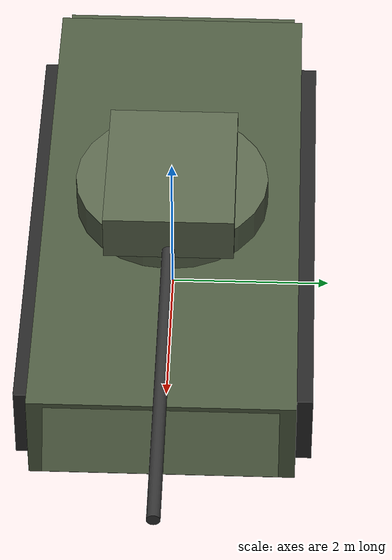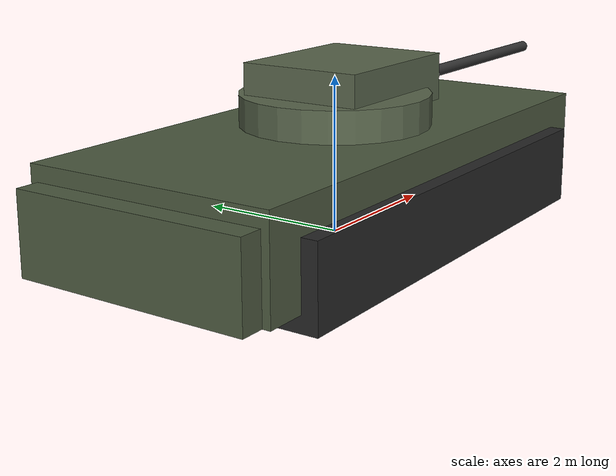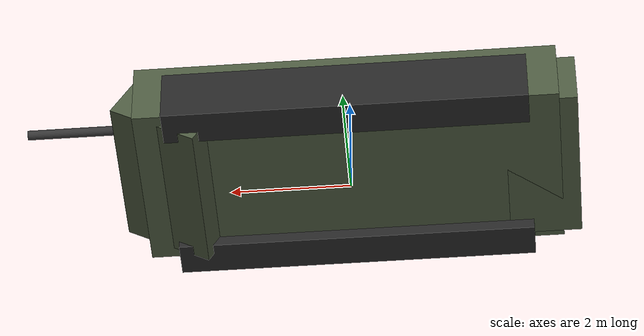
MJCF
<mujoco>
  <!-- T-90 Tank (primitive approximation) -->
  <compiler angle="degree"/>

  <asset>
    <material name="tank_body" rgba="0.3 0.35 0.25 1"/>
    <material name="tank_turret" rgba="0.35 0.4 0.3 1"/>
    <material name="tank_track" rgba="0.15 0.15 0.15 1"/>
    <material name="tank_barrel" rgba="0.2 0.2 0.2 1"/>
  </asset>

  <worldbody>
    <body name="tank_hull">
      <freejoint name="tank_root"/>
      <inertial pos="0 0 0.5" mass="46000" diaginertia="50000 80000 40000"/>

      <!-- Hull -->
      <geom name="hull_main" type="box" size="3.5 1.6 0.6" pos="0 0 0.8" material="tank_body"/>
      <geom name="hull_front" type="box" size="0.8 1.4 0.4" pos="3.0 0 0.6" euler="0 -30 0" material="tank_body"/>
      <geom name="hull_rear" type="box" size="0.6 1.5 0.5" pos="-3.2 0 0.7" material="tank_body"/>

      <!-- Track assemblies -->
      <geom name="track_left" type="box" size="3.0 0.3 0.5" pos="0 1.5 0.5" material="tank_track"/>
      <geom name="track_right" type="box" size="3.0 0.3 0.5" pos="0 -1.5 0.5" material="tank_track"/>

      <!-- Turret -->
      <body name="turret" pos="0 0 1.4">
        <joint name="turret_yaw" type="hinge" axis="0 0 1" range="-180 180" damping="1000"/>
        <inertial pos="0 0 0" mass="5000" diaginertia="2000 2000 2000"/>
        <geom name="turret_base" type="cylinder" size="1.2 0.4" material="tank_turret"/>
        <geom name="turret_top" type="box" size="1.0 0.8 0.3" pos="0.2 0 0.5" material="tank_turret"/>

        <!-- Gun barrel -->
        <body name="barrel" pos="1.5 0 0.3">
          <joint name="barrel_pitch" type="hinge" axis="0 1 0" range="-10 30" damping="500"/>
          <geom name="gun" type="cylinder" size="0.08 2.5" euler="0 90 0" pos="1.5 0 0" material="tank_barrel"/>
        </body>
      </body>

      <!-- Driver camera -->
      <camera name="driver_cam" pos="2.5 0 1.2" euler="0 -5 0" fovy="60"/>
      <site name="imu_site" pos="0 0 1.0" size="0.05"/>
    </body>
  </worldbody>

  <actuator>
    <velocity name="turret_motor" joint="turret_yaw" kv="2000"/>
    <position name="barrel_motor" joint="barrel_pitch" kp="1000"/>
  </actuator>

  <sensor>
    <accelerometer name="tank_imu" site="imu_site"/>
    <gyro name="tank_gyro" site="imu_site"/>
  </sensor>
</mujoco>
